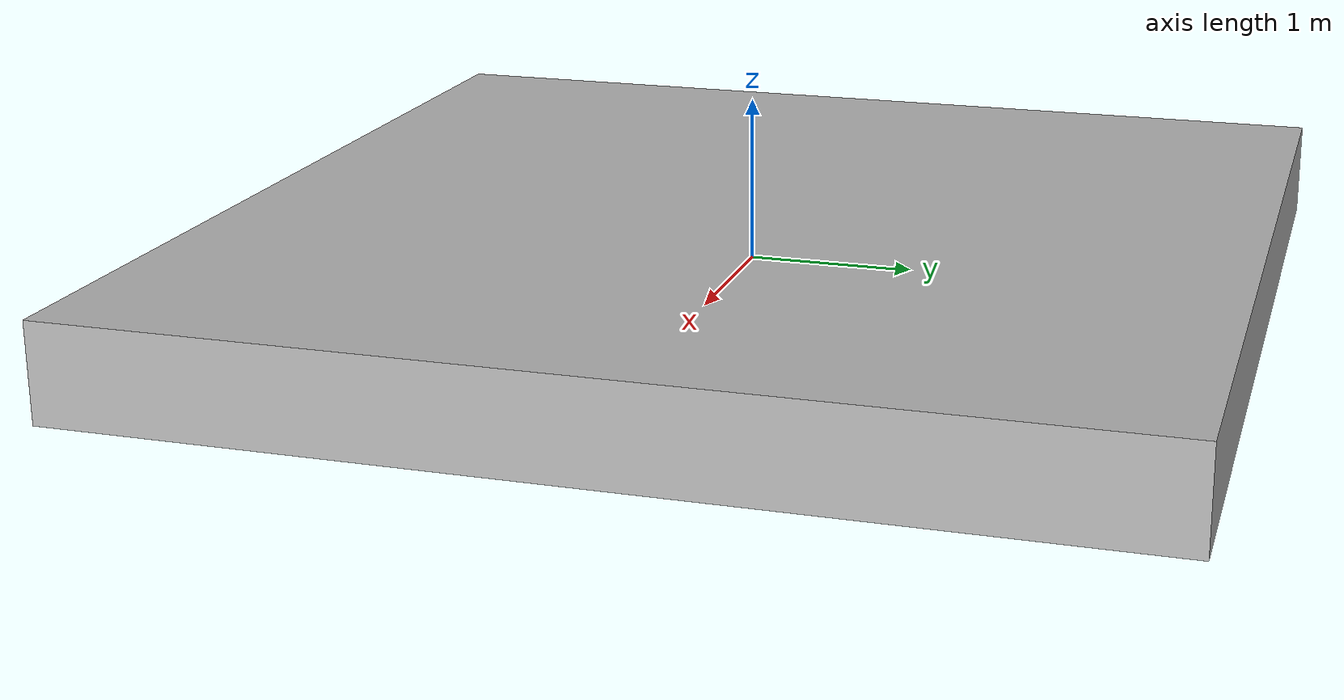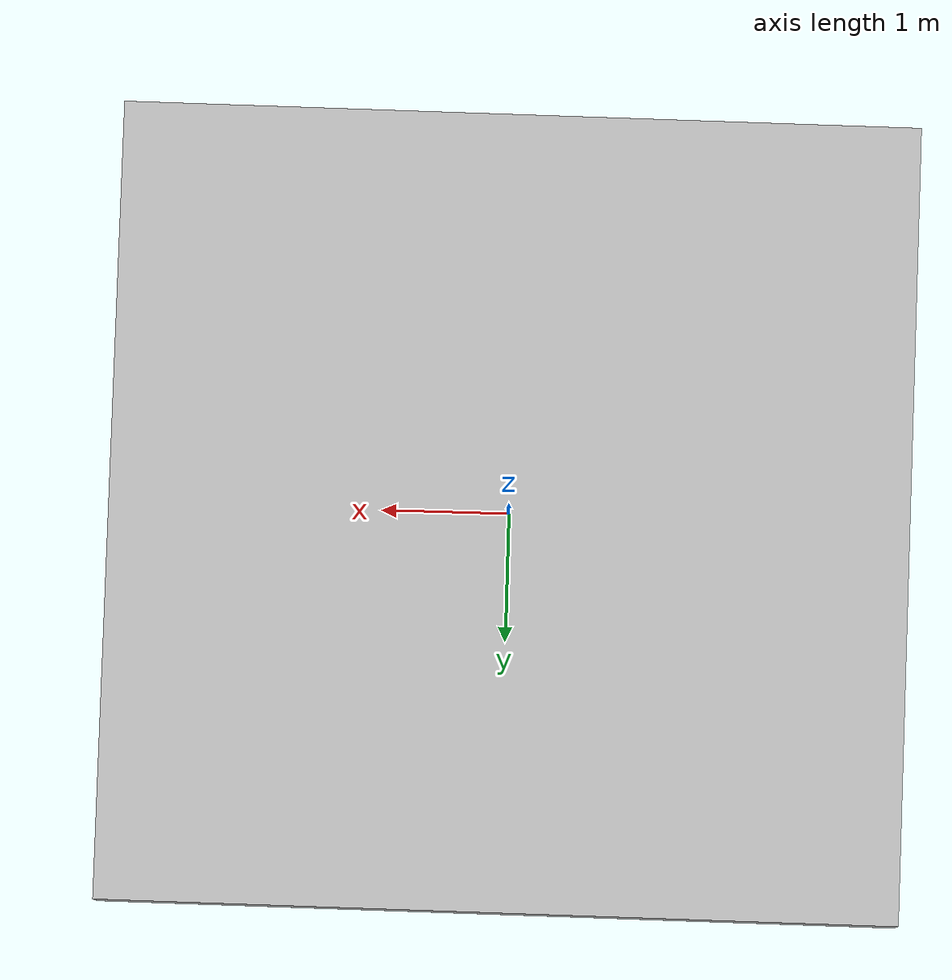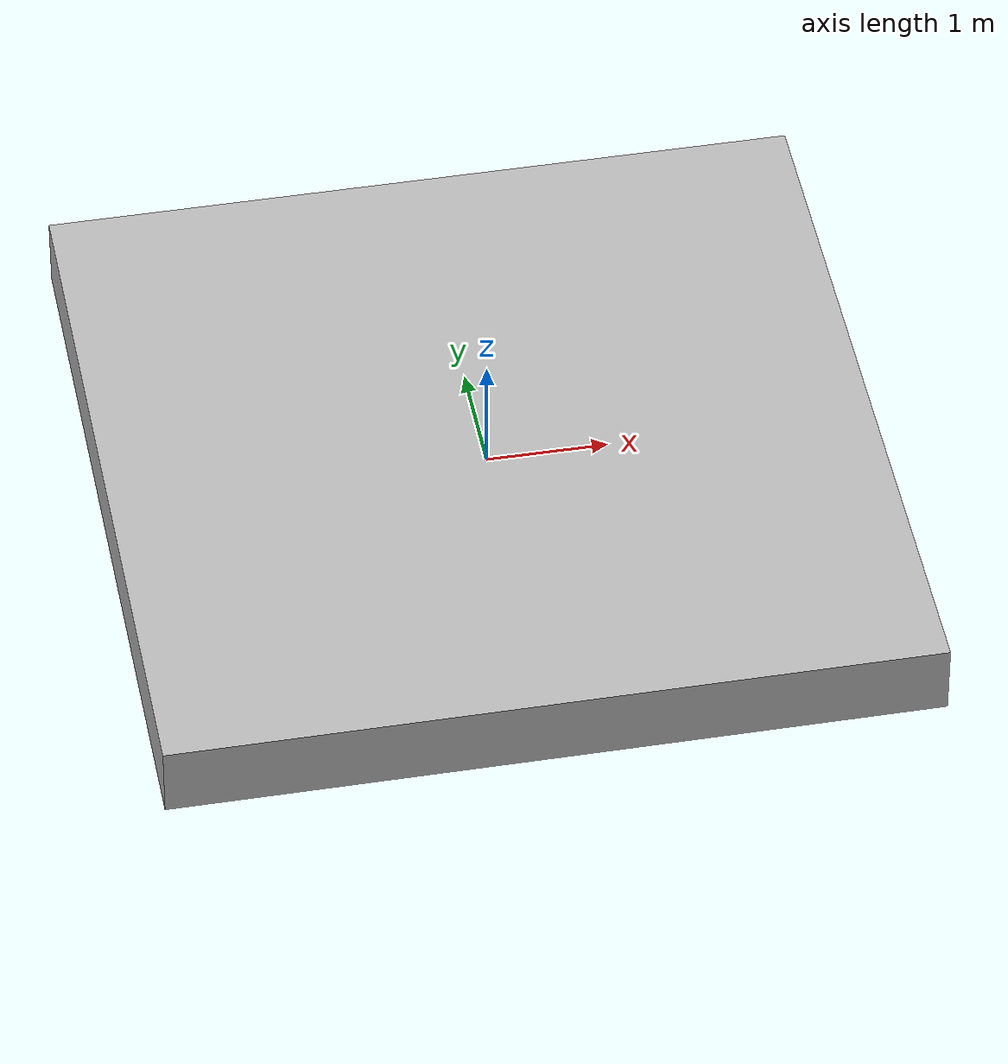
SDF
<?xml version='1.0'?>

<sdf version="1.6">
  <model name="arene_base">
    <static>true</static>
    <link name="base_link">
      <visual name="base_visual">
        <geometry>
          <box>
            <size>6.25 6.25 0.6</size>
          </box>
        </geometry>
        <material>
          <script>
            <uri>model://arene_base/materials/scripts/</uri>
            <uri>model://arene_base/materials/textures/</uri>
            <name>arene_base/FaceMaterial</name>
          </script>
        </material>
      </visual>
      <collision name="base_collision">
        <geometry>
          <box>
            <size>6.25 6.25 0.6</size>
          </box>
        </geometry>
      </collision>
    </link>
  </model>
</sdf>
